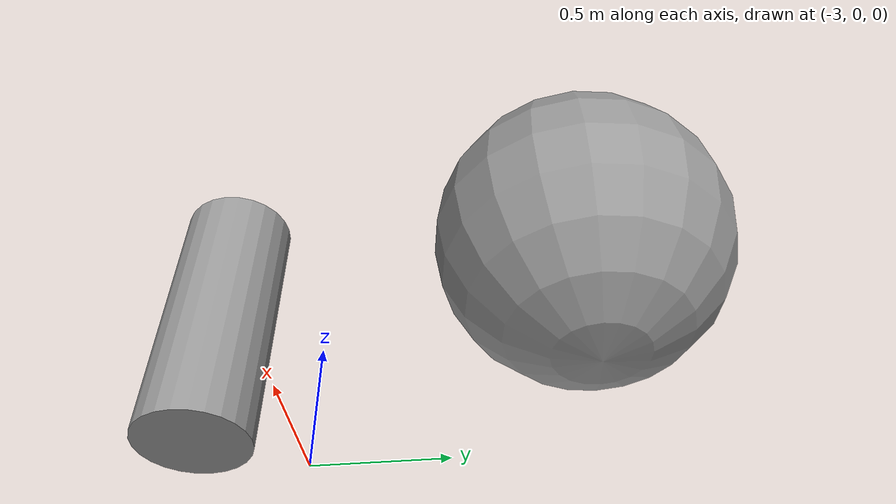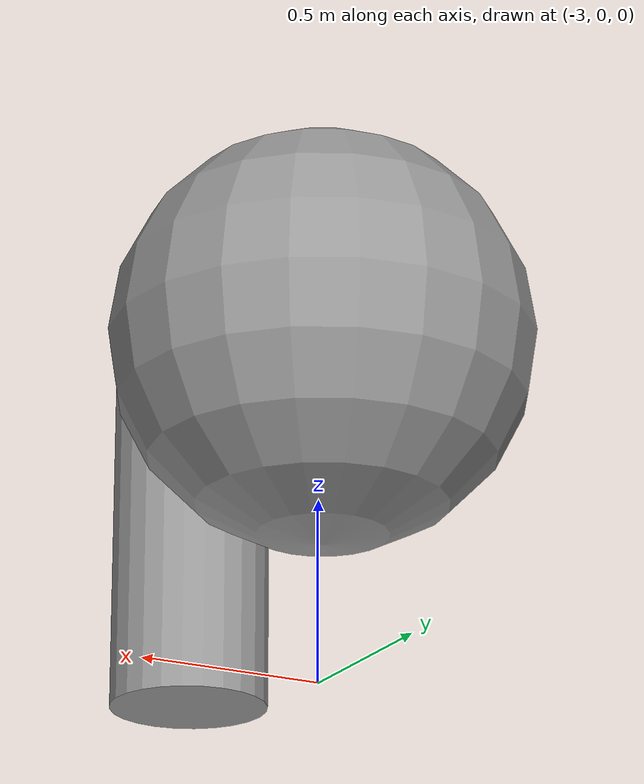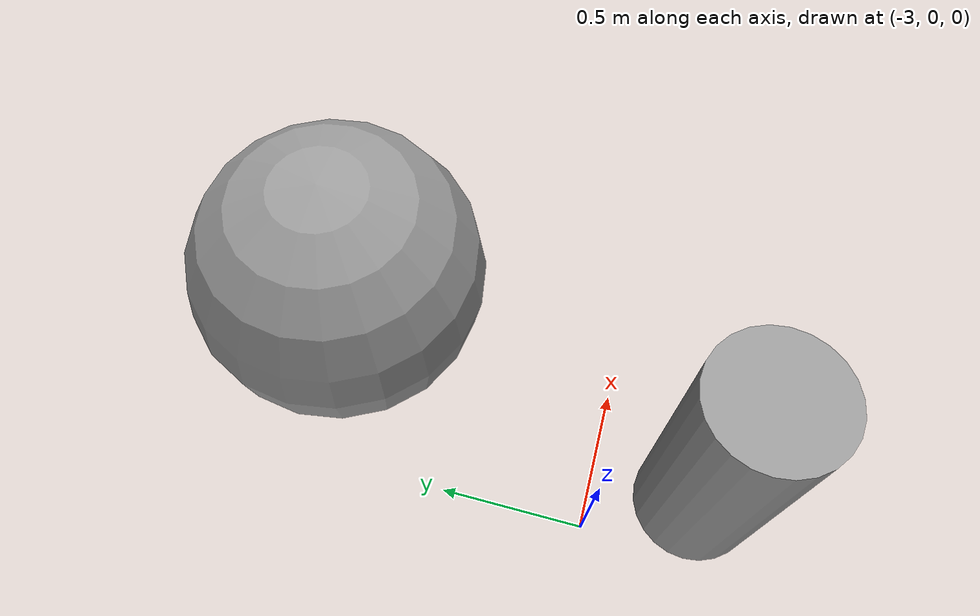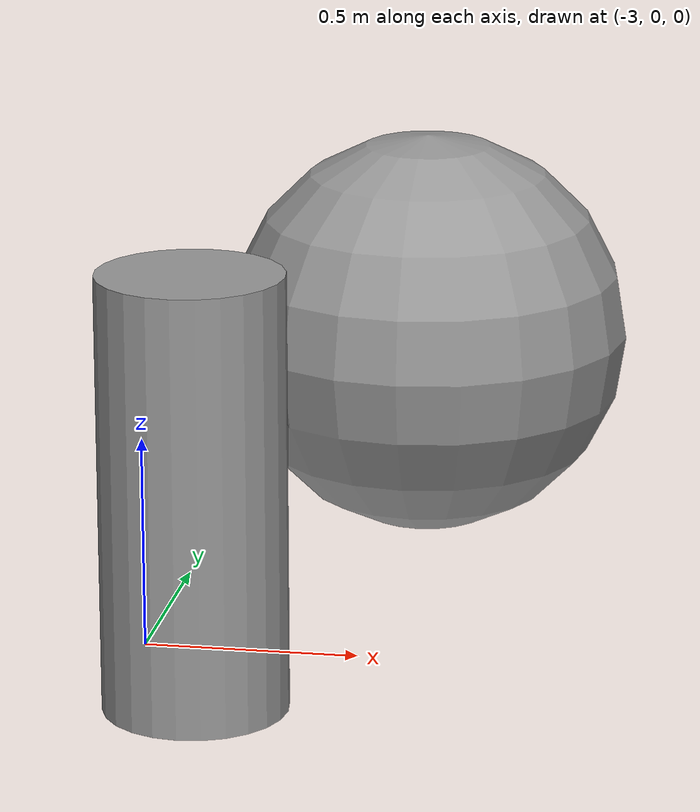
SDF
<?xml version='1.0'?>
<sdf version='1.5'>
  <model name='my_simple_arm'>
    <pose>-2.64679 0.318269 0.5 0 -0 0</pose>
    <link name='unit_sphere_0'>
      <pose>0.156065 0.681731 0 0 -0 0</pose>
      <gravity>1</gravity>
      <self_collide>0</self_collide>
      <kinematic>0</kinematic>
      <visual name='unit_sphere_0_visual'>
        <pose>0 0 0 0 -0 0</pose>
        <geometry>
          <sphere>
            <radius>0.5</radius>
          </sphere>
        </geometry>
        <material>
          <script>
            <uri>file://media/materials/scripts/gazebo.material</uri>
            <name>Gazebo/Grey</name>
          </script>
        </material>
      </visual>
      <collision name='unit_sphere_0_collision'>
        <geometry>
          <sphere>
            <radius>0.5</radius>
          </sphere>
        </geometry>
        <pose>0 0 0 0 -0 0</pose>
      </collision>
    </link>
    <link name='unit_cylinder_0'>
      <pose>-0.156065 -0.681731 0 0 -0 0</pose>
      <gravity>1</gravity>
      <self_collide>0</self_collide>
      <kinematic>0</kinematic>
      <visual name='unit_cylinder_0_visual'>
        <pose>0 0 0 0 -0 0</pose>
        <geometry>
          <cylinder>
            <radius>0.209968</radius>
            <length>1</length>
          </cylinder>
        </geometry>
        <material>
          <script>
            <uri>file://media/materials/scripts/gazebo.material</uri>
            <name>Gazebo/Grey</name>
          </script>
        </material>
      </visual>
      <collision name='unit_cylinder_0_collision'>
        <geometry>
          <cylinder>
            <radius>0.209968</radius>
            <length>1</length>
          </cylinder>
        </geometry>
        <pose>0 0 0 0 -0 0</pose>
      </collision>
    </link>
    <joint name='unit_cylinder_0_JOINT_1' type='ball'>
      <parent>unit_cylinder_0</parent>
      <child>unit_sphere_0</child>
      <axis>
        <xyz>0 0 1</xyz>
        <use_parent_model_frame>0</use_parent_model_frame>
        <limit>
          <lower>-1e+16</lower>
          <upper>1e+16</upper>
        </limit>
      </axis>
      <pose>0 0 0 0 -0 0</pose>
    </joint>
    <static>0</static>
    <allow_auto_disable>1</allow_auto_disable>
  </model>
</sdf>
